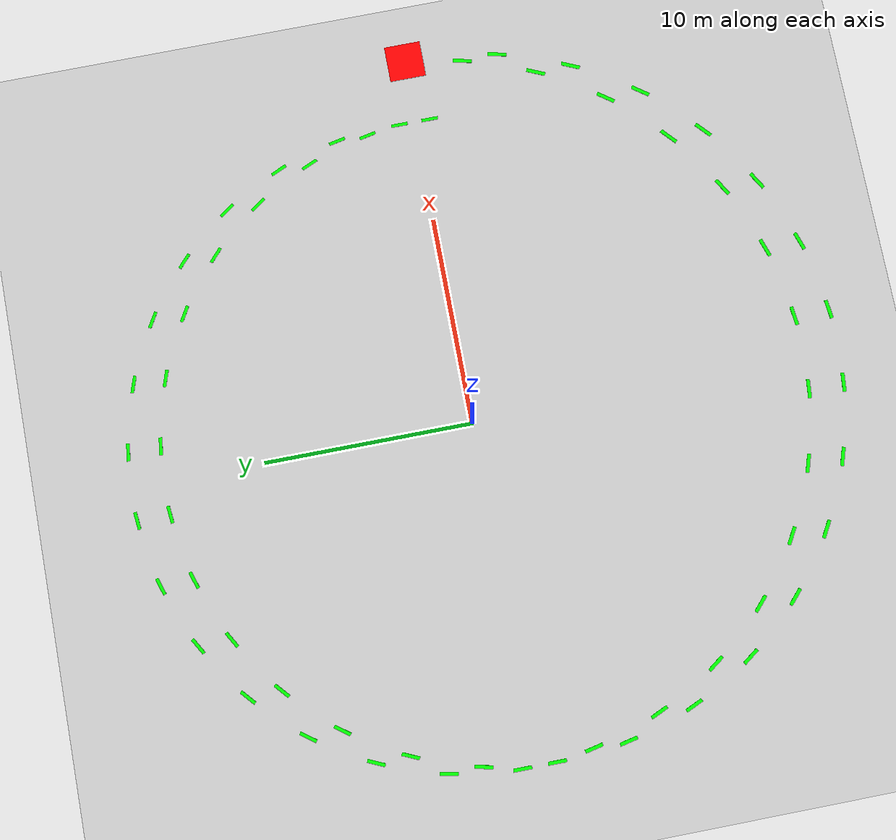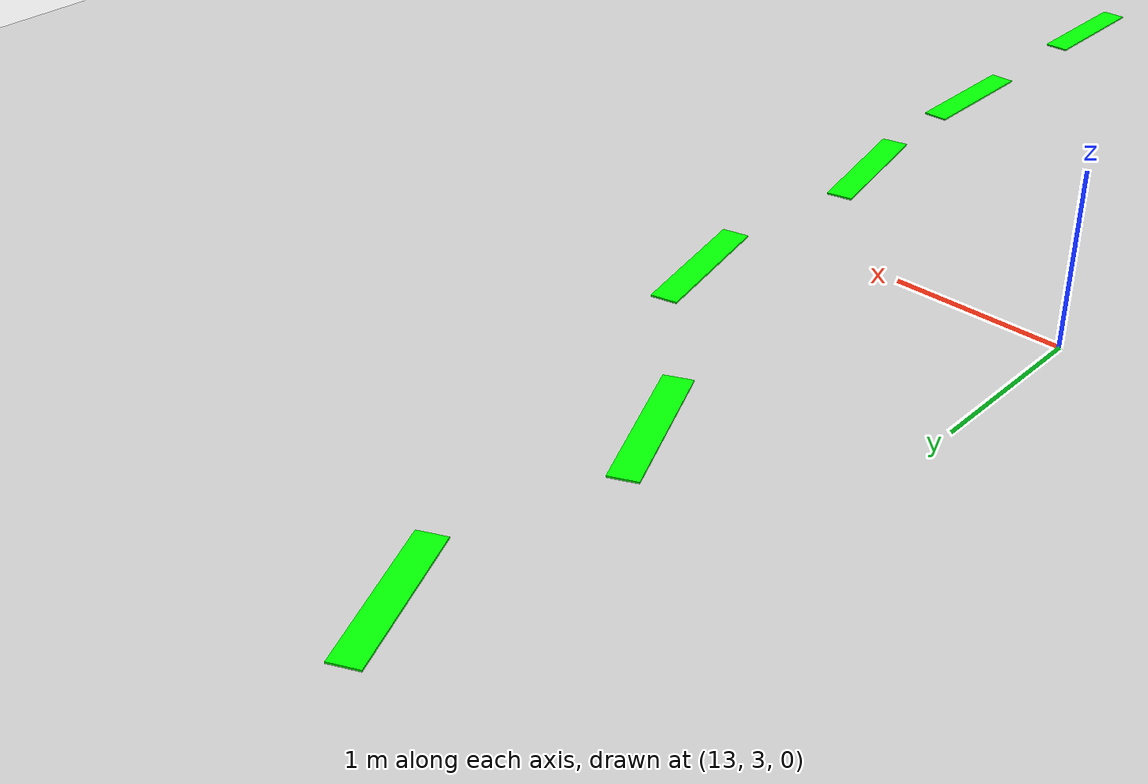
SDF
<?xml version="1.0" ?>
<sdf version="1.6">
  <world name="spiral_lane_world">
    <include>
      <uri>model://sun</uri>
    </include>
    <include>
      <uri>model://ground_plane</uri>
    </include>

    <model name="lane_seg_1_left">
      <static>true</static>
      <pose>15.0 -0.75 0.0 0 0 1.57</pose>
      <link name="lane_link_1_left">
        <visual name="segment">
          <pose>0 0 0.02 0 0 0</pose>
          <geometry><box><size>0.8 0.15 0.01</size></box></geometry>
          <material><ambient>0 1 0 1</ambient><diffuse>0 1 0 1</diffuse></material>
        </visual>
      </link>
    </model>

    <model name="lane_seg_1_right">
      <static>true</static>
      <pose>15.0 0.75 0.0 0 0 1.57</pose>
      <link name="lane_link_1_right">
        <visual name="segment">
          <pose>0 0 0.02 0 0 0</pose>
          <geometry><box><size>0.8 0.15 0.01</size></box></geometry>
          <material><ambient>0 1 0 1</ambient><diffuse>0 1 0 1</diffuse></material>
        </visual>
      </link>
    </model>

    <model name="lane_seg_2_left">
      <static>true</static>
      <pose>14.67 2.37 0.2 0 0 1.78</pose>
      <link name="lane_link_2_left">
        <visual name="segment">
          <pose>0 0 0.02 0 0 0</pose>
          <geometry><box><size>0.8 0.15 0.01</size></box></geometry>
          <material><ambient>0 1 0 1</ambient><diffuse>0 1 0 1</diffuse></material>
        </visual>
      </link>
    </model>

    <model name="lane_seg_2_right">
      <static>true</static>
      <pose>14.67 3.87 0.2 0 0 1.78</pose>
      <link name="lane_link_2_right">
        <visual name="segment">
          <pose>0 0 0.02 0 0 0</pose>
          <geometry><box><size>0.8 0.15 0.01</size></box></geometry>
          <material><ambient>0 1 0 1</ambient><diffuse>0 1 0 1</diffuse></material>
        </visual>
      </link>
    </model>

    <model name="lane_seg_3_left">
      <static>true</static>
      <pose>13.7 5.35 0.4 0 0 1.99</pose>
      <link name="lane_link_3_left">
        <visual name="segment">
          <pose>0 0 0.02 0 0 0</pose>
          <geometry><box><size>0.8 0.15 0.01</size></box></geometry>
          <material><ambient>0 1 0 1</ambient><diffuse>0 1 0 1</diffuse></material>
        </visual>
      </link>
    </model>

    <model name="lane_seg_3_right">
      <static>true</static>
      <pose>13.7 6.85 0.4 0 0 1.99</pose>
      <link name="lane_link_3_right">
        <visual name="segment">
          <pose>0 0 0.02 0 0 0</pose>
          <geometry><box><size>0.8 0.15 0.01</size></box></geometry>
          <material><ambient>0 1 0 1</ambient><diffuse>0 1 0 1</diffuse></material>
        </visual>
      </link>
    </model>

    <model name="lane_seg_4_left">
      <static>true</static>
      <pose>12.14 8.07 0.6 0 0 2.2</pose>
      <link name="lane_link_4_left">
        <visual name="segment">
          <pose>0 0 0.02 0 0 0</pose>
          <geometry><box><size>0.8 0.15 0.01</size></box></geometry>
          <material><ambient>0 1 0 1</ambient><diffuse>0 1 0 1</diffuse></material>
        </visual>
      </link>
    </model>

    <model name="lane_seg_4_right">
      <static>true</static>
      <pose>12.14 9.57 0.6 0 0 2.2</pose>
      <link name="lane_link_4_right">
        <visual name="segment">
          <pose>0 0 0.02 0 0 0</pose>
          <geometry><box><size>0.8 0.15 0.01</size></box></geometry>
          <material><ambient>0 1 0 1</ambient><diffuse>0 1 0 1</diffuse></material>
        </visual>
      </link>
    </model>

    <model name="lane_seg_5_left">
      <static>true</static>
      <pose>10.04 10.4 0.8 0 0 2.41</pose>
      <link name="lane_link_5_left">
        <visual name="segment">
          <pose>0 0 0.02 0 0 0</pose>
          <geometry><box><size>0.8 0.15 0.01</size></box></geometry>
          <material><ambient>0 1 0 1</ambient><diffuse>0 1 0 1</diffuse></material>
        </visual>
      </link>
    </model>

    <model name="lane_seg_5_right">
      <static>true</static>
      <pose>10.04 11.9 0.8 0 0 2.41</pose>
      <link name="lane_link_5_right">
        <visual name="segment">
          <pose>0 0 0.02 0 0 0</pose>
          <geometry><box><size>0.8 0.15 0.01</size></box></geometry>
          <material><ambient>0 1 0 1</ambient><diffuse>0 1 0 1</diffuse></material>
        </visual>
      </link>
    </model>

    <model name="lane_seg_6_left">
      <static>true</static>
      <pose>7.5 12.24 1.0 0 0 2.62</pose>
      <link name="lane_link_6_left">
        <visual name="segment">
          <pose>0 0 0.02 0 0 0</pose>
          <geometry><box><size>0.8 0.15 0.01</size></box></geometry>
          <material><ambient>0 1 0 1</ambient><diffuse>0 1 0 1</diffuse></material>
        </visual>
      </link>
    </model>

    <model name="lane_seg_6_right">
      <static>true</static>
      <pose>7.5 13.74 1.0 0 0 2.62</pose>
      <link name="lane_link_6_right">
        <visual name="segment">
          <pose>0 0 0.02 0 0 0</pose>
          <geometry><box><size>0.8 0.15 0.01</size></box></geometry>
          <material><ambient>0 1 0 1</ambient><diffuse>0 1 0 1</diffuse></material>
        </visual>
      </link>
    </model>

    <model name="lane_seg_7_left">
      <static>true</static>
      <pose>4.64 13.52 1.2 0 0 2.83</pose>
      <link name="lane_link_7_left">
        <visual name="segment">
          <pose>0 0 0.02 0 0 0</pose>
          <geometry><box><size>0.8 0.15 0.01</size></box></geometry>
          <material><ambient>0 1 0 1</ambient><diffuse>0 1 0 1</diffuse></material>
        </visual>
      </link>
    </model>

    <model name="lane_seg_7_right">
      <static>true</static>
      <pose>4.64 15.02 1.2 0 0 2.83</pose>
      <link name="lane_link_7_right">
        <visual name="segment">
          <pose>0 0 0.02 0 0 0</pose>
          <geometry><box><size>0.8 0.15 0.01</size></box></geometry>
          <material><ambient>0 1 0 1</ambient><diffuse>0 1 0 1</diffuse></material>
        </visual>
      </link>
    </model>

    <model name="lane_seg_8_left">
      <static>true</static>
      <pose>1.57 14.17 1.4 0 0 3.04</pose>
      <link name="lane_link_8_left">
        <visual name="segment">
          <pose>0 0 0.02 0 0 0</pose>
          <geometry><box><size>0.8 0.15 0.01</size></box></geometry>
          <material><ambient>0 1 0 1</ambient><diffuse>0 1 0 1</diffuse></material>
        </visual>
      </link>
    </model>

    <model name="lane_seg_8_right">
      <static>true</static>
      <pose>1.57 15.67 1.4 0 0 3.04</pose>
      <link name="lane_link_8_right">
        <visual name="segment">
          <pose>0 0 0.02 0 0 0</pose>
          <geometry><box><size>0.8 0.15 0.01</size></box></geometry>
          <material><ambient>0 1 0 1</ambient><diffuse>0 1 0 1</diffuse></material>
        </visual>
      </link>
    </model>

    <model name="lane_seg_9_left">
      <static>true</static>
      <pose>-1.57 14.17 1.6 0 0 3.25</pose>
      <link name="lane_link_9_left">
        <visual name="segment">
          <pose>0 0 0.02 0 0 0</pose>
          <geometry><box><size>0.8 0.15 0.01</size></box></geometry>
          <material><ambient>0 1 0 1</ambient><diffuse>0 1 0 1</diffuse></material>
        </visual>
      </link>
    </model>

    <model name="lane_seg_9_right">
      <static>true</static>
      <pose>-1.57 15.67 1.6 0 0 3.25</pose>
      <link name="lane_link_9_right">
        <visual name="segment">
          <pose>0 0 0.02 0 0 0</pose>
          <geometry><box><size>0.8 0.15 0.01</size></box></geometry>
          <material><ambient>0 1 0 1</ambient><diffuse>0 1 0 1</diffuse></material>
        </visual>
      </link>
    </model>

    <model name="lane_seg_10_left">
      <static>true</static>
      <pose>-4.64 13.52 1.8 0 0 3.46</pose>
      <link name="lane_link_10_left">
        <visual name="segment">
          <pose>0 0 0.02 0 0 0</pose>
          <geometry><box><size>0.8 0.15 0.01</size></box></geometry>
          <material><ambient>0 1 0 1</ambient><diffuse>0 1 0 1</diffuse></material>
        </visual>
      </link>
    </model>

    <model name="lane_seg_10_right">
      <static>true</static>
      <pose>-4.64 15.02 1.8 0 0 3.46</pose>
      <link name="lane_link_10_right">
        <visual name="segment">
          <pose>0 0 0.02 0 0 0</pose>
          <geometry><box><size>0.8 0.15 0.01</size></box></geometry>
          <material><ambient>0 1 0 1</ambient><diffuse>0 1 0 1</diffuse></material>
        </visual>
      </link>
    </model>

    <model name="lane_seg_11_left">
      <static>true</static>
      <pose>-7.5 12.24 2.0 0 0 3.67</pose>
      <link name="lane_link_11_left">
        <visual name="segment">
          <pose>0 0 0.02 0 0 0</pose>
          <geometry><box><size>0.8 0.15 0.01</size></box></geometry>
          <material><ambient>0 1 0 1</ambient><diffuse>0 1 0 1</diffuse></material>
        </visual>
      </link>
    </model>

    <model name="lane_seg_11_right">
      <static>true</static>
      <pose>-7.5 13.74 2.0 0 0 3.67</pose>
      <link name="lane_link_11_right">
        <visual name="segment">
          <pose>0 0 0.02 0 0 0</pose>
          <geometry><box><size>0.8 0.15 0.01</size></box></geometry>
          <material><ambient>0 1 0 1</ambient><diffuse>0 1 0 1</diffuse></material>
        </visual>
      </link>
    </model>

    <model name="lane_seg_12_left">
      <static>true</static>
      <pose>-10.04 10.4 2.2 0 0 3.87</pose>
      <link name="lane_link_12_left">
        <visual name="segment">
          <pose>0 0 0.02 0 0 0</pose>
          <geometry><box><size>0.8 0.15 0.01</size></box></geometry>
          <material><ambient>0 1 0 1</ambient><diffuse>0 1 0 1</diffuse></material>
        </visual>
      </link>
    </model>

    <model name="lane_seg_12_right">
      <static>true</static>
      <pose>-10.04 11.9 2.2 0 0 3.87</pose>
      <link name="lane_link_12_right">
        <visual name="segment">
          <pose>0 0 0.02 0 0 0</pose>
          <geometry><box><size>0.8 0.15 0.01</size></box></geometry>
          <material><ambient>0 1 0 1</ambient><diffuse>0 1 0 1</diffuse></material>
        </visual>
      </link>
    </model>

    <model name="lane_seg_13_left">
      <static>true</static>
      <pose>-12.14 8.07 2.4 0 0 4.08</pose>
      <link name="lane_link_13_left">
        <visual name="segment">
          <pose>0 0 0.02 0 0 0</pose>
          <geometry><box><size>0.8 0.15 0.01</size></box></geometry>
          <material><ambient>0 1 0 1</ambient><diffuse>0 1 0 1</diffuse></material>
        </visual>
      </link>
    </model>

    <model name="lane_seg_13_right">
      <static>true</static>
      <pose>-12.14 9.57 2.4 0 0 4.08</pose>
      <link name="lane_link_13_right">
        <visual name="segment">
          <pose>0 0 0.02 0 0 0</pose>
          <geometry><box><size>0.8 0.15 0.01</size></box></geometry>
          <material><ambient>0 1 0 1</ambient><diffuse>0 1 0 1</diffuse></material>
        </visual>
      </link>
    </model>

    <model name="lane_seg_14_left">
      <static>true</static>
      <pose>-13.7 5.35 2.6 0 0 4.29</pose>
      <link name="lane_link_14_left">
        <visual name="segment">
          <pose>0 0 0.02 0 0 0</pose>
          <geometry><box><size>0.8 0.15 0.01</size></box></geometry>
          <material><ambient>0 1 0 1</ambient><diffuse>0 1 0 1</diffuse></material>
        </visual>
      </link>
    </model>

    <model name="lane_seg_14_right">
      <static>true</static>
      <pose>-13.7 6.85 2.6 0 0 4.29</pose>
      <link name="lane_link_14_right">
        <visual name="segment">
          <pose>0 0 0.02 0 0 0</pose>
          <geometry><box><size>0.8 0.15 0.01</size></box></geometry>
          <material><ambient>0 1 0 1</ambient><diffuse>0 1 0 1</diffuse></material>
        </visual>
      </link>
    </model>

    <model name="lane_seg_15_left">
      <static>true</static>
      <pose>-14.67 2.37 2.8 0 0 4.5</pose>
      <link name="lane_link_15_left">
        <visual name="segment">
          <pose>0 0 0.02 0 0 0</pose>
          <geometry><box><size>0.8 0.15 0.01</size></box></geometry>
          <material><ambient>0 1 0 1</ambient><diffuse>0 1 0 1</diffuse></material>
        </visual>
      </link>
    </model>

    <model name="lane_seg_15_right">
      <static>true</static>
      <pose>-14.67 3.87 2.8 0 0 4.5</pose>
      <link name="lane_link_15_right">
        <visual name="segment">
          <pose>0 0 0.02 0 0 0</pose>
          <geometry><box><size>0.8 0.15 0.01</size></box></geometry>
          <material><ambient>0 1 0 1</ambient><diffuse>0 1 0 1</diffuse></material>
        </visual>
      </link>
    </model>

    <model name="lane_seg_16_left">
      <static>true</static>
      <pose>-15.0 -0.75 3.0 0 0 4.71</pose>
      <link name="lane_link_16_left">
        <visual name="segment">
          <pose>0 0 0.02 0 0 0</pose>
          <geometry><box><size>0.8 0.15 0.01</size></box></geometry>
          <material><ambient>0 1 0 1</ambient><diffuse>0 1 0 1</diffuse></material>
        </visual>
      </link>
    </model>

    <model name="lane_seg_16_right">
      <static>true</static>
      <pose>-15.0 0.75 3.0 0 0 4.71</pose>
      <link name="lane_link_16_right">
        <visual name="segment">
          <pose>0 0 0.02 0 0 0</pose>
          <geometry><box><size>0.8 0.15 0.01</size></box></geometry>
          <material><ambient>0 1 0 1</ambient><diffuse>0 1 0 1</diffuse></material>
        </visual>
      </link>
    </model>

    <model name="lane_seg_17_left">
      <static>true</static>
      <pose>-14.67 -3.87 3.2 0 0 4.92</pose>
      <link name="lane_link_17_left">
        <visual name="segment">
          <pose>0 0 0.02 0 0 0</pose>
          <geometry><box><size>0.8 0.15 0.01</size></box></geometry>
          <material><ambient>0 1 0 1</ambient><diffuse>0 1 0 1</diffuse></material>
        </visual>
      </link>
    </model>

    <model name="lane_seg_17_right">
      <static>true</static>
      <pose>-14.67 -2.37 3.2 0 0 4.92</pose>
      <link name="lane_link_17_right">
        <visual name="segment">
          <pose>0 0 0.02 0 0 0</pose>
          <geometry><box><size>0.8 0.15 0.01</size></box></geometry>
          <material><ambient>0 1 0 1</ambient><diffuse>0 1 0 1</diffuse></material>
        </visual>
      </link>
    </model>

    <model name="lane_seg_18_left">
      <static>true</static>
      <pose>-13.7 -6.85 3.4 0 0 5.13</pose>
      <link name="lane_link_18_left">
        <visual name="segment">
          <pose>0 0 0.02 0 0 0</pose>
          <geometry><box><size>0.8 0.15 0.01</size></box></geometry>
          <material><ambient>0 1 0 1</ambient><diffuse>0 1 0 1</diffuse></material>
        </visual>
      </link>
    </model>

    <model name="lane_seg_18_right">
      <static>true</static>
      <pose>-13.7 -5.35 3.4 0 0 5.13</pose>
      <link name="lane_link_18_right">
        <visual name="segment">
          <pose>0 0 0.02 0 0 0</pose>
          <geometry><box><size>0.8 0.15 0.01</size></box></geometry>
          <material><ambient>0 1 0 1</ambient><diffuse>0 1 0 1</diffuse></material>
        </visual>
      </link>
    </model>

    <model name="lane_seg_19_left">
      <static>true</static>
      <pose>-12.14 -9.57 3.6 0 0 5.34</pose>
      <link name="lane_link_19_left">
        <visual name="segment">
          <pose>0 0 0.02 0 0 0</pose>
          <geometry><box><size>0.8 0.15 0.01</size></box></geometry>
          <material><ambient>0 1 0 1</ambient><diffuse>0 1 0 1</diffuse></material>
        </visual>
      </link>
    </model>

    <model name="lane_seg_19_right">
      <static>true</static>
      <pose>-12.14 -8.07 3.6 0 0 5.34</pose>
      <link name="lane_link_19_right">
        <visual name="segment">
          <pose>0 0 0.02 0 0 0</pose>
          <geometry><box><size>0.8 0.15 0.01</size></box></geometry>
          <material><ambient>0 1 0 1</ambient><diffuse>0 1 0 1</diffuse></material>
        </visual>
      </link>
    </model>

    <model name="lane_seg_20_left">
      <static>true</static>
      <pose>-10.04 -11.9 3.8 0 0 5.55</pose>
      <link name="lane_link_20_left">
        <visual name="segment">
          <pose>0 0 0.02 0 0 0</pose>
          <geometry><box><size>0.8 0.15 0.01</size></box></geometry>
          <material><ambient>0 1 0 1</ambient><diffuse>0 1 0 1</diffuse></material>
        </visual>
      </link>
    </model>

    <model name="lane_seg_20_right">
      <static>true</static>
      <pose>-10.04 -10.4 3.8 0 0 5.55</pose>
      <link name="lane_link_20_right">
        <visual name="segment">
          <pose>0 0 0.02 0 0 0</pose>
          <geometry><box><size>0.8 0.15 0.01</size></box></geometry>
          <material><ambient>0 1 0 1</ambient><diffuse>0 1 0 1</diffuse></material>
        </visual>
      </link>
    </model>

    <model name="lane_seg_21_left">
      <static>true</static>
      <pose>-7.5 -13.74 4.0 0 0 5.76</pose>
      <link name="lane_link_21_left">
        <visual name="segment">
          <pose>0 0 0.02 0 0 0</pose>
          <geometry><box><size>0.8 0.15 0.01</size></box></geometry>
          <material><ambient>0 1 0 1</ambient><diffuse>0 1 0 1</diffuse></material>
        </visual>
      </link>
    </model>

    <model name="lane_seg_21_right">
      <static>true</static>
      <pose>-7.5 -12.24 4.0 0 0 5.76</pose>
      <link name="lane_link_21_right">
        <visual name="segment">
          <pose>0 0 0.02 0 0 0</pose>
          <geometry><box><size>0.8 0.15 0.01</size></box></geometry>
          <material><ambient>0 1 0 1</ambient><diffuse>0 1 0 1</diffuse></material>
        </visual>
      </link>
    </model>

    <model name="lane_seg_22_left">
      <static>true</static>
      <pose>-4.64 -15.02 4.2 0 0 5.97</pose>
      <link name="lane_link_22_left">
        <visual name="segment">
          <pose>0 0 0.02 0 0 0</pose>
          <geometry><box><size>0.8 0.15 0.01</size></box></geometry>
          <material><ambient>0 1 0 1</ambient><diffuse>0 1 0 1</diffuse></material>
        </visual>
      </link>
    </model>

    <model name="lane_seg_22_right">
      <static>true</static>
      <pose>-4.64 -13.52 4.2 0 0 5.97</pose>
      <link name="lane_link_22_right">
        <visual name="segment">
          <pose>0 0 0.02 0 0 0</pose>
          <geometry><box><size>0.8 0.15 0.01</size></box></geometry>
          <material><ambient>0 1 0 1</ambient><diffuse>0 1 0 1</diffuse></material>
        </visual>
      </link>
    </model>

    <model name="lane_seg_23_left">
      <static>true</static>
      <pose>-1.57 -15.67 4.4 0 0 6.18</pose>
      <link name="lane_link_23_left">
        <visual name="segment">
          <pose>0 0 0.02 0 0 0</pose>
          <geometry><box><size>0.8 0.15 0.01</size></box></geometry>
          <material><ambient>0 1 0 1</ambient><diffuse>0 1 0 1</diffuse></material>
        </visual>
      </link>
    </model>

    <model name="lane_seg_23_right">
      <static>true</static>
      <pose>-1.57 -14.17 4.4 0 0 6.18</pose>
      <link name="lane_link_23_right">
        <visual name="segment">
          <pose>0 0 0.02 0 0 0</pose>
          <geometry><box><size>0.8 0.15 0.01</size></box></geometry>
          <material><ambient>0 1 0 1</ambient><diffuse>0 1 0 1</diffuse></material>
        </visual>
      </link>
    </model>

    <model name="lane_seg_24_left">
      <static>true</static>
      <pose>1.57 -15.67 4.6 0 0 6.39</pose>
      <link name="lane_link_24_left">
        <visual name="segment">
          <pose>0 0 0.02 0 0 0</pose>
          <geometry><box><size>0.8 0.15 0.01</size></box></geometry>
          <material><ambient>0 1 0 1</ambient><diffuse>0 1 0 1</diffuse></material>
        </visual>
      </link>
    </model>

    <model name="lane_seg_24_right">
      <static>true</static>
      <pose>1.57 -14.17 4.6 0 0 6.39</pose>
      <link name="lane_link_24_right">
        <visual name="segment">
          <pose>0 0 0.02 0 0 0</pose>
          <geometry><box><size>0.8 0.15 0.01</size></box></geometry>
          <material><ambient>0 1 0 1</ambient><diffuse>0 1 0 1</diffuse></material>
        </visual>
      </link>
    </model>

    <model name="lane_seg_25_left">
      <static>true</static>
      <pose>4.64 -15.02 4.8 0 0 6.6</pose>
      <link name="lane_link_25_left">
        <visual name="segment">
          <pose>0 0 0.02 0 0 0</pose>
          <geometry><box><size>0.8 0.15 0.01</size></box></geometry>
          <material><ambient>0 1 0 1</ambient><diffuse>0 1 0 1</diffuse></material>
        </visual>
      </link>
    </model>

    <model name="lane_seg_25_right">
      <static>true</static>
      <pose>4.64 -13.52 4.8 0 0 6.6</pose>
      <link name="lane_link_25_right">
        <visual name="segment">
          <pose>0 0 0.02 0 0 0</pose>
          <geometry><box><size>0.8 0.15 0.01</size></box></geometry>
          <material><ambient>0 1 0 1</ambient><diffuse>0 1 0 1</diffuse></material>
        </visual>
      </link>
    </model>

    <model name="lane_seg_26_left">
      <static>true</static>
      <pose>7.5 -13.74 5.0 0 0 6.81</pose>
      <link name="lane_link_26_left">
        <visual name="segment">
          <pose>0 0 0.02 0 0 0</pose>
          <geometry><box><size>0.8 0.15 0.01</size></box></geometry>
          <material><ambient>0 1 0 1</ambient><diffuse>0 1 0 1</diffuse></material>
        </visual>
      </link>
    </model>

    <model name="lane_seg_26_right">
      <static>true</static>
      <pose>7.5 -12.24 5.0 0 0 6.81</pose>
      <link name="lane_link_26_right">
        <visual name="segment">
          <pose>0 0 0.02 0 0 0</pose>
          <geometry><box><size>0.8 0.15 0.01</size></box></geometry>
          <material><ambient>0 1 0 1</ambient><diffuse>0 1 0 1</diffuse></material>
        </visual>
      </link>
    </model>

    <model name="lane_seg_27_left">
      <static>true</static>
      <pose>10.04 -11.9 5.2 0 0 7.02</pose>
      <link name="lane_link_27_left">
        <visual name="segment">
          <pose>0 0 0.02 0 0 0</pose>
          <geometry><box><size>0.8 0.15 0.01</size></box></geometry>
          <material><ambient>0 1 0 1</ambient><diffuse>0 1 0 1</diffuse></material>
        </visual>
      </link>
    </model>

    <model name="lane_seg_27_right">
      <static>true</static>
      <pose>10.04 -10.4 5.2 0 0 7.02</pose>
      <link name="lane_link_27_right">
        <visual name="segment">
          <pose>0 0 0.02 0 0 0</pose>
          <geometry><box><size>0.8 0.15 0.01</size></box></geometry>
          <material><ambient>0 1 0 1</ambient><diffuse>0 1 0 1</diffuse></material>
        </visual>
      </link>
    </model>

    <model name="lane_seg_28_left">
      <static>true</static>
      <pose>12.14 -9.57 5.4 0 0 7.23</pose>
      <link name="lane_link_28_left">
        <visual name="segment">
          <pose>0 0 0.02 0 0 0</pose>
          <geometry><box><size>0.8 0.15 0.01</size></box></geometry>
          <material><ambient>0 1 0 1</ambient><diffuse>0 1 0 1</diffuse></material>
        </visual>
      </link>
    </model>

    <model name="lane_seg_28_right">
      <static>true</static>
      <pose>12.14 -8.07 5.4 0 0 7.23</pose>
      <link name="lane_link_28_right">
        <visual name="segment">
          <pose>0 0 0.02 0 0 0</pose>
          <geometry><box><size>0.8 0.15 0.01</size></box></geometry>
          <material><ambient>0 1 0 1</ambient><diffuse>0 1 0 1</diffuse></material>
        </visual>
      </link>
    </model>

    <model name="lane_seg_29_left">
      <static>true</static>
      <pose>13.7 -6.85 5.6 0 0 7.44</pose>
      <link name="lane_link_29_left">
        <visual name="segment">
          <pose>0 0 0.02 0 0 0</pose>
          <geometry><box><size>0.8 0.15 0.01</size></box></geometry>
          <material><ambient>0 1 0 1</ambient><diffuse>0 1 0 1</diffuse></material>
        </visual>
      </link>
    </model>

    <model name="lane_seg_29_right">
      <static>true</static>
      <pose>13.7 -5.35 5.6 0 0 7.44</pose>
      <link name="lane_link_29_right">
        <visual name="segment">
          <pose>0 0 0.02 0 0 0</pose>
          <geometry><box><size>0.8 0.15 0.01</size></box></geometry>
          <material><ambient>0 1 0 1</ambient><diffuse>0 1 0 1</diffuse></material>
        </visual>
      </link>
    </model>

    <model name="lane_seg_30_left">
      <static>true</static>
      <pose>14.67 -3.87 5.8 0 0 7.64</pose>
      <link name="lane_link_30_left">
        <visual name="segment">
          <pose>0 0 0.02 0 0 0</pose>
          <geometry><box><size>0.8 0.15 0.01</size></box></geometry>
          <material><ambient>0 1 0 1</ambient><diffuse>0 1 0 1</diffuse></material>
        </visual>
      </link>
    </model>

    <model name="lane_seg_30_right">
      <static>true</static>
      <pose>14.67 -2.37 5.8 0 0 7.64</pose>
      <link name="lane_link_30_right">
        <visual name="segment">
          <pose>0 0 0.02 0 0 0</pose>
          <geometry><box><size>0.8 0.15 0.01</size></box></geometry>
          <material><ambient>0 1 0 1</ambient><diffuse>0 1 0 1</diffuse></material>
        </visual>
      </link>
    </model>

    <model name="destination_zone">
      <pose>15 0 6.0 0 0 0</pose>
      <static>true</static>
      <link name="link">
        <visual name="visual">
          <geometry>
            <box>
              <size>1.5 1.5 0.01</size>
            </box>
          </geometry>
          <material>
            <ambient>1 0 0 1</ambient>
            <diffuse>1 0 0 1</diffuse>
          </material>
        </visual>
      </link>
    </model>

  </world>
</sdf>
